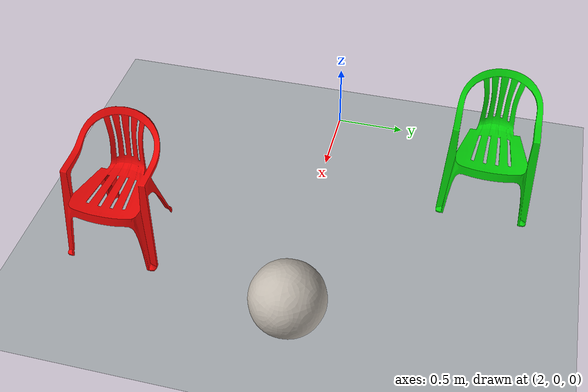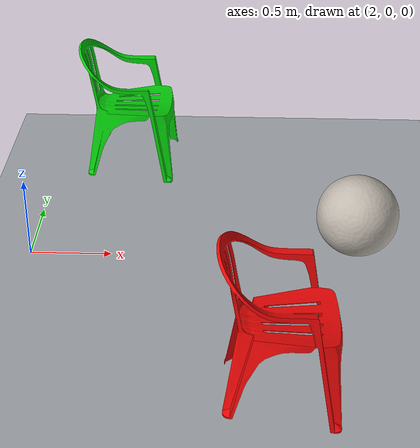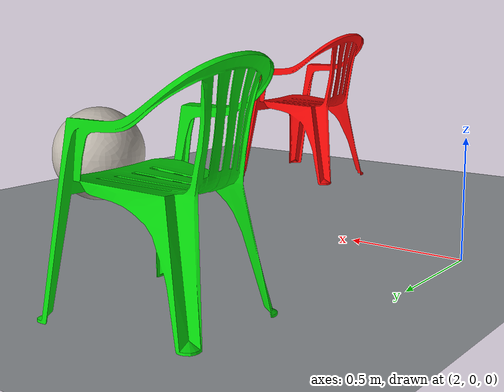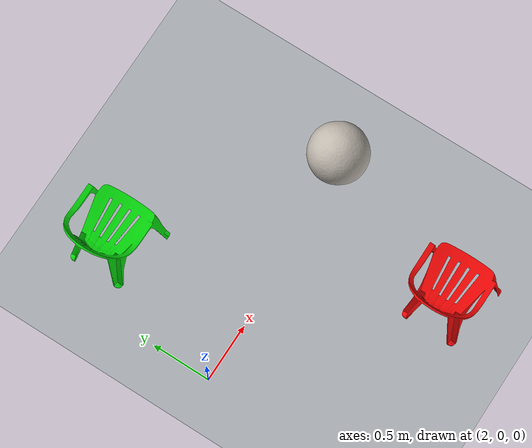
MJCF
<mujoco model="yolo_search_scene">
  <compiler angle="radian" meshdir="../assets/objects" />

  <asset>
    <mesh name="chair" file="chair.obj" smoothnormal="true" />
    <mesh name="football" file="football.obj" smoothnormal="true" />
    <texture name="football_diffuse_texture" type="2d"
             file="../assets/objects/football_diffuse.png" />
    <material name="chair_green" rgba="0.02 0.82 0.04 1" specular="0.12" shininess="0.25" />
    <material name="chair_red" rgba="0.92 0.025 0.02 1" specular="0.12" shininess="0.25" />
    <material name="football_natural" texture="football_diffuse_texture"
              rgba="1 1 1 1" specular="0.1" shininess="0.2" />
  </asset>

  <worldbody>
    <geom name="scene_floor" type="plane" pos="0 0 0" size="20 20 0.1"
          rgba="0.66 0.68 0.70 1" friction="0.8 0.3 0.1" />

    <body name="chair_green_01" pos="2.5 1.2 0" euler="0 0 1.57079632679">
      <geom name="chair_green_visual" type="mesh" mesh="chair" material="chair_green"
            contype="0" conaffinity="0" />
      <geom name="chair_green_seat_collision" type="box" pos="0 0 0.43"
            size="0.27 0.27 0.035" rgba="0 0 0 0" />
      <geom name="chair_green_back_collision" type="box" pos="0 0.25 0.65"
            size="0.27 0.035 0.22" rgba="0 0 0 0" />
    </body>

    <body name="chair_red_01" pos="3.5 -1.2 0" euler="0 0 1.57079632679">
      <geom name="chair_red_visual" type="mesh" mesh="chair" material="chair_red"
            contype="0" conaffinity="0" />
      <geom name="chair_red_seat_collision" type="box" pos="0 0 0.43"
            size="0.27 0.27 0.035" rgba="0 0 0 0" />
      <geom name="chair_red_back_collision" type="box" pos="0 0.25 0.65"
            size="0.27 0.035 0.22" rgba="0 0 0 0" />
    </body>

    <body name="ball_01" pos="4.0 0.1 0">
      <geom name="ball_visual" type="mesh" mesh="football" material="football_natural"
            contype="0" conaffinity="0" />
      <geom name="ball_collision" type="sphere" pos="0 0 0.25"
            size="0.25" rgba="0 0 0 0" />
    </body>
  </worldbody>
</mujoco>
